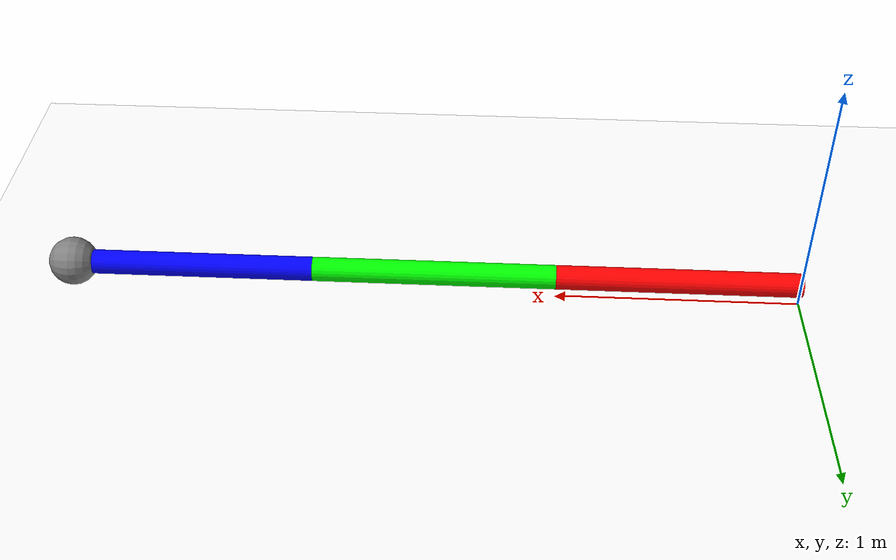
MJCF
<?xml version="1.0" encoding="UTF-8"?>
<!-- https://mujoco.readthedocs.io/en/latest/overview.html?highlight=hello.xml#examples -->
<mujoco>
   <option gravity="0 0 0" />
   <worldbody>
      <light diffuse=".5 .5 .5" pos="0 0 10" dir="0 0 -1" />
      <geom type="plane" size="3.5 3.5 0.1" rgba="1 1 1 1" />
      <body pos="0.5 0 0.1" euler="0 90 0">
         <geom type="cylinder" size="0.05 0.5" rgba="1 0 0 1" />
         <joint type="hinge" axis="-1 0 0" pos="0 0 -0.5" />
         <body pos="0 0 1" euler="0 0 0">
            <geom type="cylinder" size="0.05 0.5" rgba="0 1 0 1" />
            <joint type="hinge" axis="-1 0 0" pos="0 0 -0.5" />
            <body pos="0 0 1" euler="0 0 0">
               <geom type="cylinder" size="0.05 0.5" rgba="0 0 1 1" />
               <joint type="hinge" axis="-1 0 0" pos="0 0 -0.5" />
               <site name="tip" size="0.1" pos="0 0 0.5" />
            </body>
         </body>
      </body>
   </worldbody>
   <sensor>
      <framepos objtype="site" objname="tip" />
   </sensor>
</mujoco>
